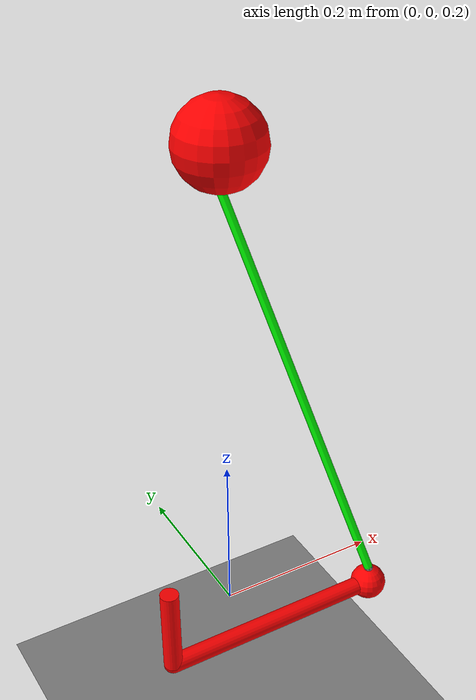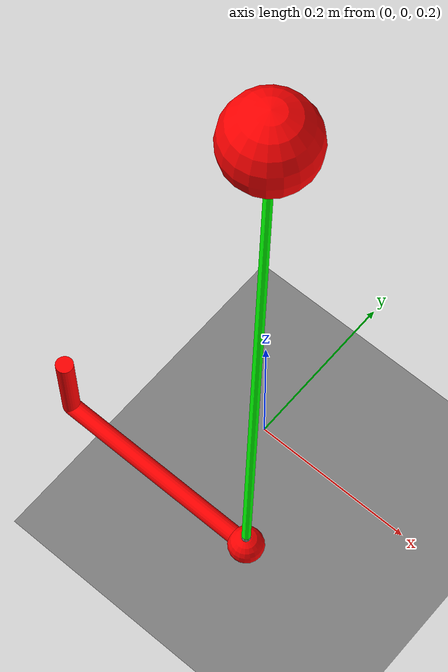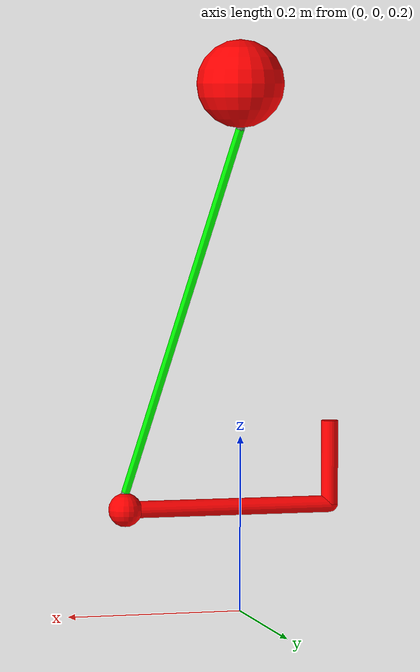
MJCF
<mujoco>
  <visual>
    <global elevation="-20"/>
  </visual>

  <worldbody>
    <geom type="plane" size="1 1 .1"/>
    <light pos="0 -.2 2" dir="0 1 -4" diffuse="1 1 1"/>
    <body pos="0 0 .8">
      <joint type="slide" stiffness="1000"/>
      <geom size=".05" mass="20" rgba="1 0 0 1"/>
      <site name="hook" pos="0 0 -.05"/>
    </body>

    <body pos="-.15 -.15 .3">
      <joint name="hinge" type="hinge" axis="0 0 1" damping=".5"/>
      <geom type="cylinder" size=".01" fromto="0 0 0 0 0 .1" rgba="1 0 0 1"/>
      <geom type="capsule" size=".01" fromto="0 0 0 .25 0 0" rgba="1 0 0 1"/>
      <geom size=".02" pos=".25 0 0" rgba="1 0 0 1"/>
      <site name="corner" pos=".25 0 .02"/>
    </body>
  </worldbody>

  <tendon>
    <spatial limited="true" range="0 1" rgba="0 1 0 1" width=".005">
      <site site="hook"/>
      <site site="corner"/>
    </spatial>
  </tendon>

  <actuator>
    <general joint="hinge" biasprm="2" biastype="affine"/>
  </actuator>
</mujoco>
